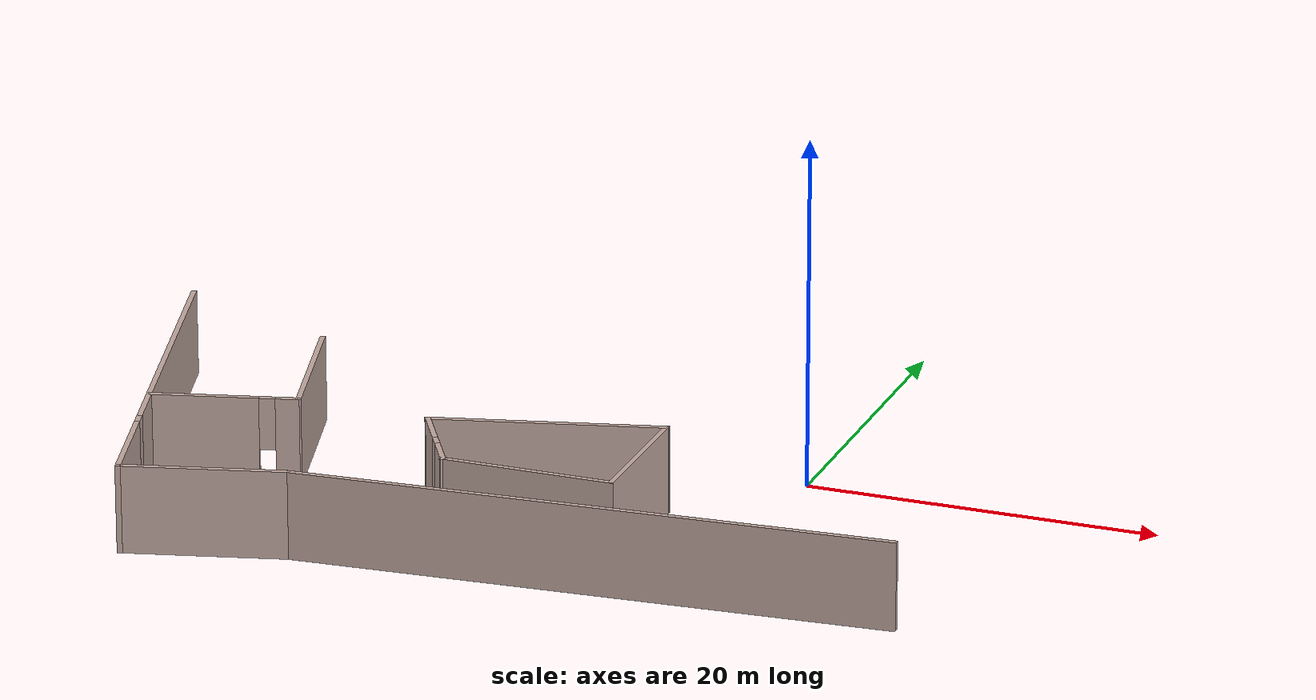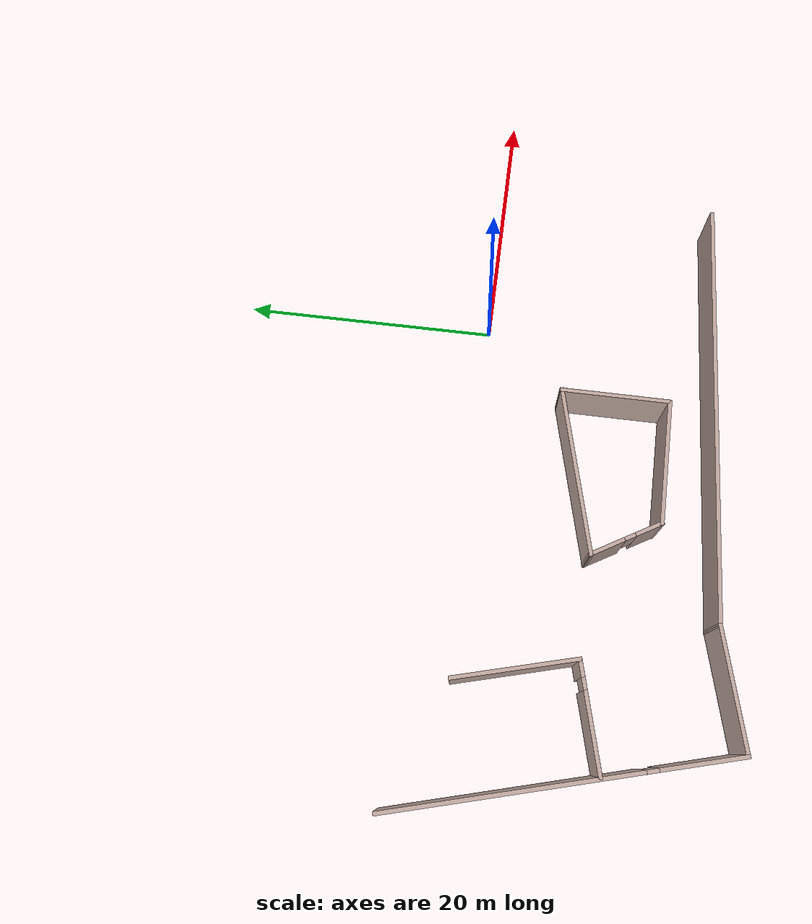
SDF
<sdf version="1.6">
 <model name="engineering_2F">
  <link name="Wall_40">
   <pose>-34.6037 -9.03362 0 0 0 -1.309</pose>
   <visual name="Wall_40_Visual_2">
    <pose>6.30714 0 3.5 0 -0 0</pose>
    <geometry><box><size>0.9 0.3 3</size></box></geometry>
    <material>
     <script><uri>file://media/materials/scripts/gazebo.material</uri><name>Gazebo/Grey</name></script>
     <ambient>0.760784 0.662745 0.627451 1</ambient>
     <diffuse>0.7 0.7 0.7 1</diffuse>
     <specular>0.01 0.01 0.01 1</specular>
     <emissive>0 0 0 1</emissive>
    </material>
   </visual>
   <visual name="Wall_40_Visual_1">
    <pose>9.97844 0 2.5 0 -0 0</pose>
    <geometry><box><size>6.4426 0.3 5</size></box></geometry>
    <material>
     <script><uri>file://media/materials/scripts/gazebo.material</uri><name>Gazebo/Grey</name></script>
     <ambient>0.760784 0.662745 0.627451 1</ambient>
     <diffuse>0.7 0.7 0.7 1</diffuse>
     <specular>0.01 0.01 0.01 1</specular>
     <emissive>0 0 0 1</emissive>
    </material>
   </visual>
   <visual name="Wall_40_Visual_0">
    <pose>-3.6713 0 2.5 0 -0 0</pose>
    <geometry><box><size>19.0569 0.3 5</size></box></geometry>
    <material>
     <script><uri>file://media/materials/scripts/gazebo.material</uri><name>Gazebo/Grey</name></script>
     <ambient>0.760784 0.662745 0.627451 1</ambient>
     <diffuse>0.7 0.7 0.7 1</diffuse>
     <specular>0.01 0.01 0.01 1</specular>
     <emissive>0 0 0 1</emissive>
    </material>
   </visual>
   <collision name="Wall_40_Collision_1">
    <pose>9.97844 0 2.5 0 -0 0</pose>
    <geometry><box><size>6.4426 0.3 5</size></box></geometry>
    <surface>
     <friction>
      <ode><mu>1</mu><mu2>1</mu2><fdir1>0 0 0</fdir1><slip1>0</slip1><slip2>0</slip2></ode>
      <torsional>
       <coefficient>1</coefficient>
       <patch_radius>0</patch_radius>
       <surface_radius>0</surface_radius>
       <use_patch_radius>1</use_patch_radius>
       <ode><slip>0</slip></ode>
      </torsional>
     </friction>
     <bounce><restitution_coefficient>0</restitution_coefficient><threshold>1e+06</threshold></bounce>
     <contact>
      <collide_without_contact>0</collide_without_contact>
      <collide_without_contact_bitmask>1</collide_without_contact_bitmask>
      <collide_bitmask>1</collide_bitmask>
      <ode>
       <soft_cfm>0</soft_cfm>
       <soft_erp>0.2</soft_erp>
       <kp>1e+13</kp>
       <kd>1</kd>
       <max_vel>0.01</max_vel>
       <min_depth>0</min_depth>
      </ode>
      <bullet>
       <split_impulse>1</split_impulse>
       <split_impulse_penetration_threshold>-0.01</split_impulse_penetration_threshold>
       <soft_cfm>0</soft_cfm>
       <soft_erp>0.2</soft_erp>
       <kp>1e+13</kp>
       <kd>1</kd>
      </bullet>
     </contact>
    </surface>
   </collision>
   <collision name="Wall_40_Collision_0">
    <pose>-3.6713 0 2.5 0 -0 0</pose>
    <geometry><box><size>19.0569 0.3 5</size></box></geometry>
    <surface>
     <friction>
      <ode><mu>1</mu><mu2>1</mu2><fdir1>0 0 0</fdir1><slip1>0</slip1><slip2>0</slip2></ode>
      <torsional>
       <coefficient>1</coefficient>
       <patch_radius>0</patch_radius>
       <surface_radius>0</surface_radius>
       <use_patch_radius>1</use_patch_radius>
       <ode><slip>0</slip></ode>
      </torsional>
     </friction>
     <bounce><restitution_coefficient>0</restitution_coefficient><threshold>1e+06</threshold></bounce>
     <contact>
      <collide_without_contact>0</collide_without_contact>
      <collide_without_contact_bitmask>1</collide_without_contact_bitmask>
      <collide_bitmask>1</collide_bitmask>
      <ode>
       <soft_cfm>0</soft_cfm>
       <soft_erp>0.2</soft_erp>
       <kp>1e+13</kp>
       <kd>1</kd>
       <max_vel>0.01</max_vel>
       <min_depth>0</min_depth>
      </ode>
      <bullet>
       <split_impulse>1</split_impulse>
       <split_impulse_penetration_threshold>-0.01</split_impulse_penetration_threshold>
       <soft_cfm>0</soft_cfm>
       <soft_erp>0.2</soft_erp>
       <kp>1e+13</kp>
       <kd>1</kd>
      </bullet>
     </contact>
    </surface>
   </collision>
   <collision name="Wall_40_Collision_2">
    <pose>6.30714 0 3.5 0 -0 0</pose>
    <geometry><box><size>0.9 0.3 3</size></box></geometry>
    <surface>
     <friction>
      <ode><mu>1</mu><mu2>1</mu2><fdir1>0 0 0</fdir1><slip1>0</slip1><slip2>0</slip2></ode>
      <torsional>
       <coefficient>1</coefficient>
       <patch_radius>0</patch_radius>
       <surface_radius>0</surface_radius>
       <use_patch_radius>1</use_patch_radius>
       <ode><slip>0</slip></ode>
      </torsional>
     </friction>
     <bounce><restitution_coefficient>0</restitution_coefficient><threshold>1e+06</threshold></bounce>
     <contact>
      <collide_without_contact>0</collide_without_contact>
      <collide_without_contact_bitmask>1</collide_without_contact_bitmask>
      <collide_bitmask>1</collide_bitmask>
      <ode>
       <soft_cfm>0</soft_cfm>
       <soft_erp>0.2</soft_erp>
       <kp>1e+13</kp>
       <kd>1</kd>
       <max_vel>0.01</max_vel>
       <min_depth>0</min_depth>
      </ode>
      <bullet>
       <split_impulse>1</split_impulse>
       <split_impulse_penetration_threshold>-0.01</split_impulse_penetration_threshold>
       <soft_cfm>0</soft_cfm>
       <soft_erp>0.2</soft_erp>
       <kp>1e+13</kp>
       <kd>1</kd>
      </bullet>
     </contact>
    </surface>
   </collision>
  </link>
  <link name="Wall_41">
   <pose>-26.8312 -20.4611 0 0 -0 0.26177</pose>
   <visual name="Wall_41_Visual">
    <pose>0 0 2.5 0 -0 0</pose>
    <geometry><box><size>9.40001 0.3 5</size></box></geometry>
    <material>
     <script><uri>file://media/materials/scripts/gazebo.material</uri><name>Gazebo/Grey</name></script>
     <ambient>0.760784 0.662745 0.627451 1</ambient>
     <diffuse>0.7 0.7 0.7 1</diffuse>
     <specular>0.01 0.01 0.01 1</specular>
     <emissive>0 0 0 1</emissive>
    </material>
   </visual>
   <collision name="Wall_41_Collision">
    <pose>0 0 2.5 0 -0 0</pose>
    <geometry><box><size>9.40001 0.3 5</size></box></geometry>
    <surface>
     <friction>
      <ode><mu>1</mu><mu2>1</mu2><fdir1>0 0 0</fdir1><slip1>0</slip1><slip2>0</slip2></ode>
      <torsional>
       <coefficient>1</coefficient>
       <patch_radius>0</patch_radius>
       <surface_radius>0</surface_radius>
       <use_patch_radius>1</use_patch_radius>
       <ode><slip>0</slip></ode>
      </torsional>
     </friction>
     <bounce><restitution_coefficient>0</restitution_coefficient><threshold>1e+06</threshold></bounce>
     <contact>
      <collide_without_contact>0</collide_without_contact>
      <collide_without_contact_bitmask>1</collide_without_contact_bitmask>
      <collide_bitmask>1</collide_bitmask>
      <ode>
       <soft_cfm>0</soft_cfm>
       <soft_erp>0.2</soft_erp>
       <kp>1e+13</kp>
       <kd>1</kd>
       <max_vel>0.01</max_vel>
       <min_depth>0</min_depth>
      </ode>
      <bullet>
       <split_impulse>1</split_impulse>
       <split_impulse_penetration_threshold>-0.01</split_impulse_penetration_threshold>
       <soft_cfm>0</soft_cfm>
       <soft_erp>0.2</soft_erp>
       <kp>1e+13</kp>
       <kd>1</kd>
      </bullet>
     </contact>
    </surface>
   </collision>
  </link>
  <link name="Wall_42">
   <pose>-5.82716 -18.1831 0 0 -0 0.066163</pose>
   <visual name="Wall_42_Visual">
    <pose>0 0 2.5 0 -0 0</pose>
    <geometry><box><size>33.5908 0.3 5</size></box></geometry>
    <material>
     <script><uri>file://media/materials/scripts/gazebo.material</uri><name>Gazebo/Grey</name></script>
     <ambient>0.760784 0.662745 0.627451 1</ambient>
     <diffuse>0.7 0.7 0.7 1</diffuse>
     <specular>0.01 0.01 0.01 1</specular>
     <emissive>0 0 0 1</emissive>
    </material>
   </visual>
   <collision name="Wall_42_Collision">
    <pose>0 0 2.5 0 -0 0</pose>
    <geometry><box><size>33.5908 0.3 5</size></box></geometry>
    <surface>
     <friction>
      <ode><mu>1</mu><mu2>1</mu2><fdir1>0 0 0</fdir1><slip1>0</slip1><slip2>0</slip2></ode>
      <torsional>
       <coefficient>1</coefficient>
       <patch_radius>0</patch_radius>
       <surface_radius>0</surface_radius>
       <use_patch_radius>1</use_patch_radius>
       <ode><slip>0</slip></ode>
      </torsional>
     </friction>
     <bounce><restitution_coefficient>0</restitution_coefficient><threshold>1e+06</threshold></bounce>
     <contact>
      <collide_without_contact>0</collide_without_contact>
      <collide_without_contact_bitmask>1</collide_without_contact_bitmask>
      <collide_bitmask>1</collide_bitmask>
      <ode>
       <soft_cfm>0</soft_cfm>
       <soft_erp>0.2</soft_erp>
       <kp>1e+13</kp>
       <kd>1</kd>
       <max_vel>0.01</max_vel>
       <min_depth>0</min_depth>
      </ode>
      <bullet>
       <split_impulse>1</split_impulse>
       <split_impulse_penetration_threshold>-0.01</split_impulse_penetration_threshold>
       <soft_cfm>0</soft_cfm>
       <soft_erp>0.2</soft_erp>
       <kp>1e+13</kp>
       <kd>1</kd>
      </bullet>
     </contact>
    </surface>
   </collision>
  </link>
  <link name="Wall_44">
   <pose>-16.9067 -12.1056 0 0 0 -1.04718</pose>
   <visual name="Wall_44_Visual_2">
    <pose>0.30774 0 3.5 0 -0 0</pose>
    <geometry><box><size>0.9 0.3 3</size></box></geometry>
    <material>
     <script><uri>file://media/materials/scripts/gazebo.material</uri><name>Gazebo/Grey</name></script>
     <ambient>0.760784 0.662745 0.627451 1</ambient>
     <diffuse>0.7 0.7 0.7 1</diffuse>
     <specular>0.01 0.01 0.01 1</specular>
     <emissive>0 0 0 1</emissive>
    </material>
   </visual>
   <visual name="Wall_44_Visual_0">
    <pose>-1.60858 0 2.5 0 -0 0</pose>
    <geometry><box><size>2.93263 0.3 5</size></box></geometry>
    <material>
     <script><uri>file://media/materials/scripts/gazebo.material</uri><name>Gazebo/Grey</name></script>
     <ambient>0.760784 0.662745 0.627451 1</ambient>
     <diffuse>0.7 0.7 0.7 1</diffuse>
     <specular>0.01 0.01 0.01 1</specular>
     <emissive>0 0 0 1</emissive>
    </material>
   </visual>
   <visual name="Wall_44_Visual_1">
    <pose>1.91632 0 2.5 0 -0 0</pose>
    <geometry><box><size>2.31715 0.3 5</size></box></geometry>
    <material>
     <script><uri>file://media/materials/scripts/gazebo.material</uri><name>Gazebo/Grey</name></script>
     <ambient>0.760784 0.662745 0.627451 1</ambient>
     <diffuse>0.7 0.7 0.7 1</diffuse>
     <specular>0.01 0.01 0.01 1</specular>
     <emissive>0 0 0 1</emissive>
    </material>
   </visual>
   <collision name="Wall_44_Collision_2">
    <pose>0.30774 0 3.5 0 -0 0</pose>
    <geometry><box><size>0.9 0.3 3</size></box></geometry>
    <surface>
     <friction>
      <ode><mu>1</mu><mu2>1</mu2><fdir1>0 0 0</fdir1><slip1>0</slip1><slip2>0</slip2></ode>
      <torsional>
       <coefficient>1</coefficient>
       <patch_radius>0</patch_radius>
       <surface_radius>0</surface_radius>
       <use_patch_radius>1</use_patch_radius>
       <ode><slip>0</slip></ode>
      </torsional>
     </friction>
     <bounce><restitution_coefficient>0</restitution_coefficient><threshold>1e+06</threshold></bounce>
     <contact>
      <collide_without_contact>0</collide_without_contact>
      <collide_without_contact_bitmask>1</collide_without_contact_bitmask>
      <collide_bitmask>1</collide_bitmask>
      <ode>
       <soft_cfm>0</soft_cfm>
       <soft_erp>0.2</soft_erp>
       <kp>1e+13</kp>
       <kd>1</kd>
       <max_vel>0.01</max_vel>
       <min_depth>0</min_depth>
      </ode>
      <bullet>
       <split_impulse>1</split_impulse>
       <split_impulse_penetration_threshold>-0.01</split_impulse_penetration_threshold>
       <soft_cfm>0</soft_cfm>
       <soft_erp>0.2</soft_erp>
       <kp>1e+13</kp>
       <kd>1</kd>
      </bullet>
     </contact>
    </surface>
   </collision>
   <collision name="Wall_44_Collision_0">
    <pose>-1.60858 0 2.5 0 -0 0</pose>
    <geometry><box><size>2.93263 0.3 5</size></box></geometry>
    <surface>
     <friction>
      <ode><mu>1</mu><mu2>1</mu2><fdir1>0 0 0</fdir1><slip1>0</slip1><slip2>0</slip2></ode>
      <torsional>
       <coefficient>1</coefficient>
       <patch_radius>0</patch_radius>
       <surface_radius>0</surface_radius>
       <use_patch_radius>1</use_patch_radius>
       <ode><slip>0</slip></ode>
      </torsional>
     </friction>
     <bounce><restitution_coefficient>0</restitution_coefficient><threshold>1e+06</threshold></bounce>
     <contact>
      <collide_without_contact>0</collide_without_contact>
      <collide_without_contact_bitmask>1</collide_without_contact_bitmask>
      <collide_bitmask>1</collide_bitmask>
      <ode>
       <soft_cfm>0</soft_cfm>
       <soft_erp>0.2</soft_erp>
       <kp>1e+13</kp>
       <kd>1</kd>
       <max_vel>0.01</max_vel>
       <min_depth>0</min_depth>
      </ode>
      <bullet>
       <split_impulse>1</split_impulse>
       <split_impulse_penetration_threshold>-0.01</split_impulse_penetration_threshold>
       <soft_cfm>0</soft_cfm>
       <soft_erp>0.2</soft_erp>
       <kp>1e+13</kp>
       <kd>1</kd>
      </bullet>
     </contact>
    </surface>
   </collision>
   <collision name="Wall_44_Collision_1">
    <pose>1.91632 0 2.5 0 -0 0</pose>
    <geometry><box><size>2.31715 0.3 5</size></box></geometry>
    <surface>
     <friction>
      <ode><mu>1</mu><mu2>1</mu2><fdir1>0 0 0</fdir1><slip1>0</slip1><slip2>0</slip2></ode>
      <torsional>
       <coefficient>1</coefficient>
       <patch_radius>0</patch_radius>
       <surface_radius>0</surface_radius>
       <use_patch_radius>1</use_patch_radius>
       <ode><slip>0</slip></ode>
      </torsional>
     </friction>
     <bounce><restitution_coefficient>0</restitution_coefficient><threshold>1e+06</threshold></bounce>
     <contact>
      <collide_without_contact>0</collide_without_contact>
      <collide_without_contact_bitmask>1</collide_without_contact_bitmask>
      <collide_bitmask>1</collide_bitmask>
      <ode>
       <soft_cfm>0</soft_cfm>
       <soft_erp>0.2</soft_erp>
       <kp>1e+13</kp>
       <kd>1</kd>
       <max_vel>0.01</max_vel>
       <min_depth>0</min_depth>
      </ode>
      <bullet>
       <split_impulse>1</split_impulse>
       <split_impulse_penetration_threshold>-0.01</split_impulse_penetration_threshold>
       <soft_cfm>0</soft_cfm>
       <soft_erp>0.2</soft_erp>
       <kp>1e+13</kp>
       <kd>1</kd>
      </bullet>
     </contact>
    </surface>
   </collision>
  </link>
  <link name="Wall_45">
   <pose>-10.6442 -14.6386 0 0 -0 0</pose>
   <visual name="Wall_45_Visual">
    <pose>0 0 2.5 0 -0 0</pose>
    <geometry><box><size>9.9 0.3 5</size></box></geometry>
    <material>
     <script><uri>file://media/materials/scripts/gazebo.material</uri><name>Gazebo/Grey</name></script>
     <ambient>0.760784 0.662745 0.627451 1</ambient>
     <diffuse>0.7 0.7 0.7 1</diffuse>
     <specular>0.01 0.01 0.01 1</specular>
     <emissive>0 0 0 1</emissive>
    </material>
   </visual>
   <collision name="Wall_45_Collision">
    <pose>0 0 2.5 0 -0 0</pose>
    <geometry><box><size>9.9 0.3 5</size></box></geometry>
    <surface>
     <friction>
      <ode><mu>1</mu><mu2>1</mu2><fdir1>0 0 0</fdir1><slip1>0</slip1><slip2>0</slip2></ode>
      <torsional>
       <coefficient>1</coefficient>
       <patch_radius>0</patch_radius>
       <surface_radius>0</surface_radius>
       <use_patch_radius>1</use_patch_radius>
       <ode><slip>0</slip></ode>
      </torsional>
     </friction>
     <bounce><restitution_coefficient>0</restitution_coefficient><threshold>1e+06</threshold></bounce>
     <contact>
      <collide_without_contact>0</collide_without_contact>
      <collide_without_contact_bitmask>1</collide_without_contact_bitmask>
      <collide_bitmask>1</collide_bitmask>
      <ode>
       <soft_cfm>0</soft_cfm>
       <soft_erp>0.2</soft_erp>
       <kp>1e+13</kp>
       <kd>1</kd>
       <max_vel>0.01</max_vel>
       <min_depth>0</min_depth>
      </ode>
      <bullet>
       <split_impulse>1</split_impulse>
       <split_impulse_penetration_threshold>-0.01</split_impulse_penetration_threshold>
       <soft_cfm>0</soft_cfm>
       <soft_erp>0.2</soft_erp>
       <kp>1e+13</kp>
       <kd>1</kd>
      </bullet>
     </contact>
    </surface>
   </collision>
  </link>
  <link name="Wall_46">
   <pose>-5.84416 -10.4636 0 0 -0 1.5708</pose>
   <visual name="Wall_46_Visual">
    <pose>0 0 2.5 0 -0 0</pose>
    <geometry><box><size>8.64969 0.3 5</size></box></geometry>
    <material>
     <script><uri>file://media/materials/scripts/gazebo.material</uri><name>Gazebo/Grey</name></script>
     <ambient>0.760784 0.662745 0.627451 1</ambient>
     <diffuse>0.7 0.7 0.7 1</diffuse>
     <specular>0.01 0.01 0.01 1</specular>
     <emissive>0 0 0 1</emissive>
    </material>
   </visual>
   <collision name="Wall_46_Collision">
    <pose>0 0 2.5 0 -0 0</pose>
    <geometry><box><size>8.64969 0.3 5</size></box></geometry>
    <surface>
     <friction>
      <ode><mu>1</mu><mu2>1</mu2><fdir1>0 0 0</fdir1><slip1>0</slip1><slip2>0</slip2></ode>
      <torsional>
       <coefficient>1</coefficient>
       <patch_radius>0</patch_radius>
       <surface_radius>0</surface_radius>
       <use_patch_radius>1</use_patch_radius>
       <ode><slip>0</slip></ode>
      </torsional>
     </friction>
     <bounce><restitution_coefficient>0</restitution_coefficient><threshold>1e+06</threshold></bounce>
     <contact>
      <collide_without_contact>0</collide_without_contact>
      <collide_without_contact_bitmask>1</collide_without_contact_bitmask>
      <collide_bitmask>1</collide_bitmask>
      <ode>
       <soft_cfm>0</soft_cfm>
       <soft_erp>0.2</soft_erp>
       <kp>1e+13</kp>
       <kd>1</kd>
       <max_vel>0.01</max_vel>
       <min_depth>0</min_depth>
      </ode>
      <bullet>
       <split_impulse>1</split_impulse>
       <split_impulse_penetration_threshold>-0.01</split_impulse_penetration_threshold>
       <soft_cfm>0</soft_cfm>
       <soft_erp>0.2</soft_erp>
       <kp>1e+13</kp>
       <kd>1</kd>
      </bullet>
     </contact>
    </surface>
   </collision>
  </link>
  <link name="Wall_47">
   <pose>-12.1067 -7.93062 0 0 0 -2.88517</pose>
   <visual name="Wall_47_Visual">
    <pose>0 0 2.5 0 -0 0</pose>
    <geometry><box><size>13.2483 0.3 5</size></box></geometry>
    <material>
     <script><uri>file://media/materials/scripts/gazebo.material</uri><name>Gazebo/Grey</name></script>
     <ambient>0.760784 0.662745 0.627451 1</ambient>
     <diffuse>0.7 0.7 0.7 1</diffuse>
     <specular>0.01 0.01 0.01 1</specular>
     <emissive>0 0 0 1</emissive>
    </material>
   </visual>
   <collision name="Wall_47_Collision">
    <pose>0 0 2.5 0 -0 0</pose>
    <geometry><box><size>13.2483 0.3 5</size></box></geometry>
    <surface>
     <friction>
      <ode><mu>1</mu><mu2>1</mu2><fdir1>0 0 0</fdir1><slip1>0</slip1><slip2>0</slip2></ode>
      <torsional>
       <coefficient>1</coefficient>
       <patch_radius>0</patch_radius>
       <surface_radius>0</surface_radius>
       <use_patch_radius>1</use_patch_radius>
       <ode><slip>0</slip></ode>
      </torsional>
     </friction>
     <bounce><restitution_coefficient>0</restitution_coefficient><threshold>1e+06</threshold></bounce>
     <contact>
      <collide_without_contact>0</collide_without_contact>
      <collide_without_contact_bitmask>1</collide_without_contact_bitmask>
      <collide_bitmask>1</collide_bitmask>
      <ode>
       <soft_cfm>0</soft_cfm>
       <soft_erp>0.2</soft_erp>
       <kp>1e+13</kp>
       <kd>1</kd>
       <max_vel>0.01</max_vel>
       <min_depth>0</min_depth>
      </ode>
      <bullet>
       <split_impulse>1</split_impulse>
       <split_impulse_penetration_threshold>-0.01</split_impulse_penetration_threshold>
       <soft_cfm>0</soft_cfm>
       <soft_erp>0.2</soft_erp>
       <kp>1e+13</kp>
       <kd>1</kd>
      </bullet>
     </contact>
    </surface>
   </collision>
  </link>
  <link name="Wall_57">
   <pose>-27.2082 -4.92962 0 0 0 -1.3107</pose>
   <visual name="Wall_57_Visual">
    <pose>0 0 2.5 0 -0 0</pose>
    <geometry><box><size>9.63992 0.3 5</size></box></geometry>
    <material>
     <script><uri>file://media/materials/scripts/gazebo.material</uri><name>Gazebo/Grey</name></script>
     <ambient>0.760784 0.662745 0.627451 1</ambient>
     <diffuse>0.7 0.7 0.7 1</diffuse>
     <specular>0.01 0.01 0.01 1</specular>
     <emissive>0 0 0 1</emissive>
    </material>
   </visual>
   <collision name="Wall_57_Collision">
    <pose>0 0 2.5 0 -0 0</pose>
    <geometry><box><size>9.63992 0.3 5</size></box></geometry>
    <surface>
     <friction>
      <ode><mu>1</mu><mu2>1</mu2><fdir1>0 0 0</fdir1><slip1>0</slip1><slip2>0</slip2></ode>
      <torsional>
       <coefficient>1</coefficient>
       <patch_radius>0</patch_radius>
       <surface_radius>0</surface_radius>
       <use_patch_radius>1</use_patch_radius>
       <ode><slip>0</slip></ode>
      </torsional>
     </friction>
     <bounce><restitution_coefficient>0</restitution_coefficient><threshold>1e+06</threshold></bounce>
     <contact>
      <collide_without_contact>0</collide_without_contact>
      <collide_without_contact_bitmask>1</collide_without_contact_bitmask>
      <collide_bitmask>1</collide_bitmask>
      <ode>
       <soft_cfm>0</soft_cfm>
       <soft_erp>0.2</soft_erp>
       <kp>1e+13</kp>
       <kd>1</kd>
       <max_vel>0.01</max_vel>
       <min_depth>0</min_depth>
      </ode>
      <bullet>
       <split_impulse>1</split_impulse>
       <split_impulse_penetration_threshold>-0.01</split_impulse_penetration_threshold>
       <soft_cfm>0</soft_cfm>
       <soft_erp>0.2</soft_erp>
       <kp>1e+13</kp>
       <kd>1</kd>
      </bullet>
     </contact>
    </surface>
   </collision>
  </link>
  <link name="Wall_58">
   <pose>-29.9192 -10.4906 0 0 0 -2.87984</pose>
   <visual name="Wall_58_Visual_0">
    <pose>-3.48941 0 2.5 0 -0 0</pose>
    <geometry><box><size>1.4206 0.3 5</size></box></geometry>
    <material>
     <script><uri>file://media/materials/scripts/gazebo.material</uri><name>Gazebo/Grey</name></script>
     <ambient>0.760784 0.662745 0.627451 1</ambient>
     <diffuse>0.7 0.7 0.7 1</diffuse>
     <specular>0.01 0.01 0.01 1</specular>
     <emissive>0 0 0 1</emissive>
    </material>
   </visual>
   <visual name="Wall_58_Visual_2">
    <pose>-2.32912 0 3.5 0 -0 0</pose>
    <geometry><box><size>0.9 0.3 3</size></box></geometry>
    <material>
     <script><uri>file://media/materials/scripts/gazebo.material</uri><name>Gazebo/Grey</name></script>
     <ambient>0.760784 0.662745 0.627451 1</ambient>
     <diffuse>0.7 0.7 0.7 1</diffuse>
     <specular>0.01 0.01 0.01 1</specular>
     <emissive>0 0 0 1</emissive>
    </material>
   </visual>
   <visual name="Wall_58_Visual_1">
    <pose>1.1603 0 2.5 0 -0 0</pose>
    <geometry><box><size>6.07883 0.3 5</size></box></geometry>
    <material>
     <script><uri>file://media/materials/scripts/gazebo.material</uri><name>Gazebo/Grey</name></script>
     <ambient>0.760784 0.662745 0.627451 1</ambient>
     <diffuse>0.7 0.7 0.7 1</diffuse>
     <specular>0.01 0.01 0.01 1</specular>
     <emissive>0 0 0 1</emissive>
    </material>
   </visual>
   <collision name="Wall_58_Collision_2">
    <pose>-2.32912 0 3.5 0 -0 0</pose>
    <geometry><box><size>0.9 0.3 3</size></box></geometry>
    <surface>
     <friction>
      <ode><mu>1</mu><mu2>1</mu2><fdir1>0 0 0</fdir1><slip1>0</slip1><slip2>0</slip2></ode>
      <torsional>
       <coefficient>1</coefficient>
       <patch_radius>0</patch_radius>
       <surface_radius>0</surface_radius>
       <use_patch_radius>1</use_patch_radius>
       <ode><slip>0</slip></ode>
      </torsional>
     </friction>
     <bounce><restitution_coefficient>0</restitution_coefficient><threshold>1e+06</threshold></bounce>
     <contact>
      <collide_without_contact>0</collide_without_contact>
      <collide_without_contact_bitmask>1</collide_without_contact_bitmask>
      <collide_bitmask>1</collide_bitmask>
      <ode>
       <soft_cfm>0</soft_cfm>
       <soft_erp>0.2</soft_erp>
       <kp>1e+13</kp>
       <kd>1</kd>
       <max_vel>0.01</max_vel>
       <min_depth>0</min_depth>
      </ode>
      <bullet>
       <split_impulse>1</split_impulse>
       <split_impulse_penetration_threshold>-0.01</split_impulse_penetration_threshold>
       <soft_cfm>0</soft_cfm>
       <soft_erp>0.2</soft_erp>
       <kp>1e+13</kp>
       <kd>1</kd>
      </bullet>
     </contact>
    </surface>
   </collision>
   <collision name="Wall_58_Collision_1">
    <pose>1.1603 0 2.5 0 -0 0</pose>
    <geometry><box><size>6.07883 0.3 5</size></box></geometry>
    <surface>
     <friction>
      <ode><mu>1</mu><mu2>1</mu2><fdir1>0 0 0</fdir1><slip1>0</slip1><slip2>0</slip2></ode>
      <torsional>
       <coefficient>1</coefficient>
       <patch_radius>0</patch_radius>
       <surface_radius>0</surface_radius>
       <use_patch_radius>1</use_patch_radius>
       <ode><slip>0</slip></ode>
      </torsional>
     </friction>
     <bounce><restitution_coefficient>0</restitution_coefficient><threshold>1e+06</threshold></bounce>
     <contact>
      <collide_without_contact>0</collide_without_contact>
      <collide_without_contact_bitmask>1</collide_without_contact_bitmask>
      <collide_bitmask>1</collide_bitmask>
      <ode>
       <soft_cfm>0</soft_cfm>
       <soft_erp>0.2</soft_erp>
       <kp>1e+13</kp>
       <kd>1</kd>
       <max_vel>0.01</max_vel>
       <min_depth>0</min_depth>
      </ode>
      <bullet>
       <split_impulse>1</split_impulse>
       <split_impulse_penetration_threshold>-0.01</split_impulse_penetration_threshold>
       <soft_cfm>0</soft_cfm>
       <soft_erp>0.2</soft_erp>
       <kp>1e+13</kp>
       <kd>1</kd>
      </bullet>
     </contact>
    </surface>
   </collision>
   <collision name="Wall_58_Collision_0">
    <pose>-3.48941 0 2.5 0 -0 0</pose>
    <geometry><box><size>1.4206 0.3 5</size></box></geometry>
    <surface>
     <friction>
      <ode><mu>1</mu><mu2>1</mu2><fdir1>0 0 0</fdir1><slip1>0</slip1><slip2>0</slip2></ode>
      <torsional>
       <coefficient>1</coefficient>
       <patch_radius>0</patch_radius>
       <surface_radius>0</surface_radius>
       <use_patch_radius>1</use_patch_radius>
       <ode><slip>0</slip></ode>
      </torsional>
     </friction>
     <bounce><restitution_coefficient>0</restitution_coefficient><threshold>1e+06</threshold></bounce>
     <contact>
      <collide_without_contact>0</collide_without_contact>
      <collide_without_contact_bitmask>1</collide_without_contact_bitmask>
      <collide_bitmask>1</collide_bitmask>
      <ode>
       <soft_cfm>0</soft_cfm>
       <soft_erp>0.2</soft_erp>
       <kp>1e+13</kp>
       <kd>1</kd>
       <max_vel>0.01</max_vel>
       <min_depth>0</min_depth>
      </ode>
      <bullet>
       <split_impulse>1</split_impulse>
       <split_impulse_penetration_threshold>-0.01</split_impulse_penetration_threshold>
       <soft_cfm>0</soft_cfm>
       <soft_erp>0.2</soft_erp>
       <kp>1e+13</kp>
       <kd>1</kd>
      </bullet>
     </contact>
    </surface>
   </collision>
  </link>
  <static>1</static>
 </model>
</sdf>
